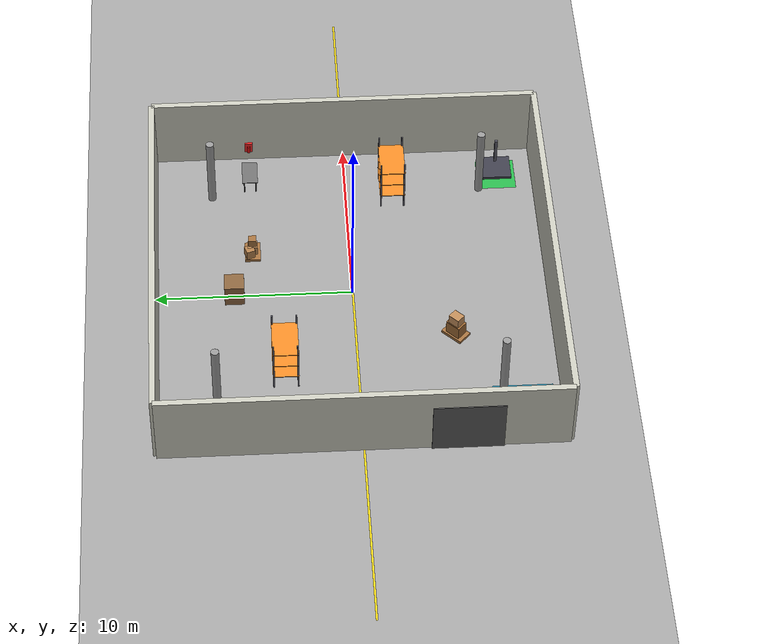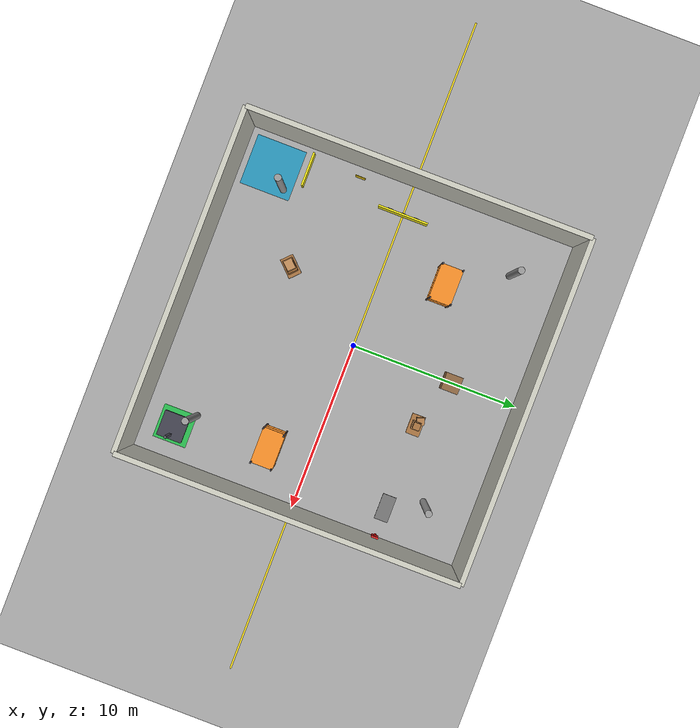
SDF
<?xml version="1.0" ?>
<!--
  Warehouse world for AGV robot simulation
  Compatible with Gazebo Harmonic (gz sim)
-->
<sdf version="1.9">
  <world name="warehouse">

    <!-- Physics settings - Optimized for skid-steer robot stability -->
    <physics name="1ms" type="ignored">
      <max_step_size>0.001</max_step_size>
      <real_time_factor>1.0</real_time_factor>
      <real_time_update_rate>1000</real_time_update_rate>
      <!-- ODE physics parameters for better contact stability -->
      <max_contacts>20</max_contacts>
      <ode>
        <solver>
          <type>quick</type>
          <iters>50</iters>
          <sor>1.3</sor>
        </solver>
        <constraints>
          <cfm>0.0</cfm>
          <erp>0.2</erp>
          <contact_max_correcting_vel>100.0</contact_max_correcting_vel>
          <contact_surface_layer>0.001</contact_surface_layer>
        </constraints>
      </ode>
    </physics>

    <!-- Plugin for physics engine -->
    <plugin
      filename="gz-sim-physics-system"
      name="gz::sim::systems::Physics">
    </plugin>

    <!-- Plugin for user commands -->
    <plugin
      filename="gz-sim-user-commands-system"
      name="gz::sim::systems::UserCommands">
    </plugin>

    <!-- Plugin for scene broadcaster -->
    <plugin
      filename="gz-sim-scene-broadcaster-system"
      name="gz::sim::systems::SceneBroadcaster">
    </plugin>

    <!-- Plugin for sensors -->
    <plugin
      filename="gz-sim-sensors-system"
      name="gz::sim::systems::Sensors">
      <render_engine>ogre2</render_engine>
    </plugin>

    <!-- Plugin for IMU -->
    <plugin
      filename="gz-sim-imu-system"
      name="gz::sim::systems::Imu">
    </plugin>

    <!-- Sun light (external ambient lighting) -->
    <light type="directional" name="sun">
      <cast_shadows>true</cast_shadows>
      <pose>0 0 20 0 0 0</pose>
      <diffuse>0.7 0.7 0.65 1</diffuse>
      <specular>0.3 0.3 0.3 1</specular>
      <attenuation>
        <range>1000</range>
        <constant>0.9</constant>
        <linear>0.01</linear>
        <quadratic>0.001</quadratic>
      </attenuation>
      <direction>-0.4 0.2 -0.9</direction>
    </light>

    <!-- Ambient warehouse lighting -->
    <light type="directional" name="ambient_fill">
      <cast_shadows>false</cast_shadows>
      <pose>0 0 10 0 0 0</pose>
      <diffuse>0.4 0.4 0.4 1</diffuse>
      <specular>0.1 0.1 0.1 1</specular>
      <direction>0.3 -0.3 -0.7</direction>
    </light>

    <!-- Warehouse concrete floor -->
    <model name="ground_plane">
      <static>true</static>
      <link name="link">
        <collision name="collision">
          <geometry>
            <plane>
              <normal>0 0 1</normal>
              <size>100 100</size>
            </plane>
          </geometry>
          <surface>
            <friction>
              <ode>
                <mu>100</mu>
                <mu2>50</mu2>
              </ode>
            </friction>
          </surface>
        </collision>
        <visual name="concrete_floor">
          <geometry>
            <plane>
              <normal>0 0 1</normal>
              <size>100 100</size>
            </plane>
          </geometry>
          <material>
            <ambient>0.6 0.6 0.6 1</ambient>
            <diffuse>0.65 0.65 0.65 1</diffuse>
            <specular>0.1 0.1 0.1 1</specular>
          </material>
        </visual>
      </link>
    </model>

    <!-- Floor marking lines -->
    <!-- Center aisle line -->
    <model name="floor_line_center">
      <static>true</static>
      <pose>0 0 0.001 0 0 0</pose>
      <link name="link">
        <visual name="visual">
          <geometry>
            <box>
              <size>40 0.1 0.001</size>
            </box>
          </geometry>
          <material>
            <ambient>0.95 0.85 0.1 1</ambient>
            <diffuse>0.95 0.85 0.1 1</diffuse>
          </material>
        </visual>
      </link>
    </model>

    <!-- Loading zone markings -->
    <model name="loading_zone_1">
      <static>true</static>
      <pose>-8 -8 0.001 0 0 0</pose>
      <link name="link">
        <visual name="visual">
          <geometry>
            <box>
              <size>3 3 0.001</size>
            </box>
          </geometry>
          <material>
            <ambient>0.0 0.6 0.8 0.7</ambient>
            <diffuse>0.0 0.6 0.8 0.7</diffuse>
          </material>
        </visual>
      </link>
    </model>

    <!-- Parking/Charging zone -->
    <model name="charging_zone">
      <static>true</static>
      <pose>8 -8 0.001 0 0 0</pose>
      <link name="link">
        <visual name="visual">
          <geometry>
            <box>
              <size>2 2 0.001</size>
            </box>
          </geometry>
          <material>
            <ambient>0.0 0.8 0.2 0.7</ambient>
            <diffuse>0.0 0.8 0.2 0.7</diffuse>
          </material>
        </visual>
      </link>
    </model>

    <!-- Warehouse walls and structure -->
    <!-- North Wall with windows -->
    <model name="wall_north">
      <static>true</static>
      <pose>10 0 2 0 0 0</pose>
      <link name="link">
        <collision name="collision">
          <geometry>
            <box>
              <size>0.3 20 4</size>
            </box>
          </geometry>
        </collision>
        <visual name="main_wall">
          <geometry>
            <box>
              <size>0.3 20 4</size>
            </box>
          </geometry>
          <material>
            <ambient>0.75 0.75 0.7 1</ambient>
            <diffuse>0.8 0.8 0.75 1</diffuse>
            <specular>0.1 0.1 0.1 1</specular>
          </material>
        </visual>
      </link>
    </model>

    <!-- North wall windows -->
    <model name="window_north_1">
      <static>true</static>
      <pose>10.2 -6 2.5 0 0 0</pose>
      <link name="link">
        <visual name="visual">
          <geometry>
            <box>
              <size>0.05 2 1.5</size>
            </box>
          </geometry>
          <material>
            <ambient>0.5 0.7 0.9 0.5</ambient>
            <diffuse>0.5 0.7 0.9 0.5</diffuse>
          </material>
        </visual>
      </link>
    </model>

    <model name="window_north_2">
      <static>true</static>
      <pose>10.2 0 2.5 0 0 0</pose>
      <link name="link">
        <visual name="visual">
          <geometry>
            <box>
              <size>0.05 2 1.5</size>
            </box>
          </geometry>
          <material>
            <ambient>0.5 0.7 0.9 0.5</ambient>
            <diffuse>0.5 0.7 0.9 0.5</diffuse>
          </material>
        </visual>
      </link>
    </model>

    <model name="window_north_3">
      <static>true</static>
      <pose>10.2 6 2.5 0 0 0</pose>
      <link name="link">
        <visual name="visual">
          <geometry>
            <box>
              <size>0.05 2 1.5</size>
            </box>
          </geometry>
          <material>
            <ambient>0.5 0.7 0.9 0.5</ambient>
            <diffuse>0.5 0.7 0.9 0.5</diffuse>
          </material>
        </visual>
      </link>
    </model>

    <!-- South Wall with loading dock door -->
    <model name="wall_south">
      <static>true</static>
      <pose>-10 0 2 0 0 0</pose>
      <link name="link">
        <collision name="collision">
          <geometry>
            <box>
              <size>0.3 20 4</size>
            </box>
          </geometry>
        </collision>
        <visual name="main_wall">
          <geometry>
            <box>
              <size>0.3 20 4</size>
            </box>
          </geometry>
          <material>
            <ambient>0.75 0.75 0.7 1</ambient>
            <diffuse>0.8 0.8 0.75 1</diffuse>
            <specular>0.1 0.1 0.1 1</specular>
          </material>
        </visual>
      </link>
    </model>

    <!-- Loading dock door -->
    <model name="loading_door">
      <static>true</static>
      <pose>-10.2 -5 1.5 0 0 0</pose>
      <link name="link">
        <visual name="visual">
          <geometry>
            <box>
              <size>0.05 3.5 3</size>
            </box>
          </geometry>
          <material>
            <ambient>0.3 0.3 0.3 1</ambient>
            <diffuse>0.35 0.35 0.35 1</diffuse>
          </material>
        </visual>
      </link>
    </model>

    <!-- East Wall -->
    <model name="wall_east">
      <static>true</static>
      <pose>0 10 2 0 0 0</pose>
      <link name="link">
        <collision name="collision">
          <geometry>
            <box>
              <size>20 0.3 4</size>
            </box>
          </geometry>
        </collision>
        <visual name="main_wall">
          <geometry>
            <box>
              <size>20 0.3 4</size>
            </box>
          </geometry>
          <material>
            <ambient>0.75 0.75 0.7 1</ambient>
            <diffuse>0.8 0.8 0.75 1</diffuse>
            <specular>0.1 0.1 0.1 1</specular>
          </material>
        </visual>
      </link>
    </model>

    <!-- West Wall -->
    <model name="wall_west">
      <static>true</static>
      <pose>0 -10 2 0 0 0</pose>
      <link name="link">
        <collision name="collision">
          <geometry>
            <box>
              <size>20 0.3 4</size>
            </box>
          </geometry>
        </collision>
        <visual name="main_wall">
          <geometry>
            <box>
              <size>20 0.3 4</size>
            </box>
          </geometry>
          <material>
            <ambient>0.75 0.75 0.7 1</ambient>
            <diffuse>0.8 0.8 0.75 1</diffuse>
            <specular>0.1 0.1 0.1 1</specular>
          </material>
        </visual>
      </link>
    </model>

    <!-- Structural columns -->
    <model name="column_1">
      <static>true</static>
      <pose>-7 7 2 0 0 0</pose>
      <link name="link">
        <collision name="collision">
          <geometry>
            <cylinder>
              <radius>0.2</radius>
              <length>4</length>
            </cylinder>
          </geometry>
        </collision>
        <visual name="visual">
          <geometry>
            <cylinder>
              <radius>0.2</radius>
              <length>4</length>
            </cylinder>
          </geometry>
          <material>
            <ambient>0.5 0.5 0.5 1</ambient>
            <diffuse>0.6 0.6 0.6 1</diffuse>
          </material>
        </visual>
      </link>
    </model>

    <model name="column_2">
      <static>true</static>
      <pose>-7 -7 2 0 0 0</pose>
      <link name="link">
        <collision name="collision">
          <geometry>
            <cylinder>
              <radius>0.2</radius>
              <length>4</length>
            </cylinder>
          </geometry>
        </collision>
        <visual name="visual">
          <geometry>
            <cylinder>
              <radius>0.2</radius>
              <length>4</length>
            </cylinder>
          </geometry>
          <material>
            <ambient>0.5 0.5 0.5 1</ambient>
            <diffuse>0.6 0.6 0.6 1</diffuse>
          </material>
        </visual>
      </link>
    </model>

    <model name="column_3">
      <static>true</static>
      <pose>7 7 2 0 0 0</pose>
      <link name="link">
        <collision name="collision">
          <geometry>
            <cylinder>
              <radius>0.2</radius>
              <length>4</length>
            </cylinder>
          </geometry>
        </collision>
        <visual name="visual">
          <geometry>
            <cylinder>
              <radius>0.2</radius>
              <length>4</length>
            </cylinder>
          </geometry>
          <material>
            <ambient>0.5 0.5 0.5 1</ambient>
            <diffuse>0.6 0.6 0.6 1</diffuse>
          </material>
        </visual>
      </link>
    </model>

    <model name="column_4">
      <static>true</static>
      <pose>7 -7 2 0 0 0</pose>
      <link name="link">
        <collision name="collision">
          <geometry>
            <cylinder>
              <radius>0.2</radius>
              <length>4</length>
            </cylinder>
          </geometry>
        </collision>
        <visual name="visual">
          <geometry>
            <cylinder>
              <radius>0.2</radius>
              <length>4</length>
            </cylinder>
          </geometry>
          <material>
            <ambient>0.5 0.5 0.5 1</ambient>
            <diffuse>0.6 0.6 0.6 1</diffuse>
          </material>
        </visual>
      </link>
    </model>

    <!-- Storage Rack 1 (left side) -->
    <model name="storage_rack_1">
      <static>true</static>
      <pose>-6 3 0 0 0 0</pose>
      <link name="link">
        <!-- Vertical posts -->
        <visual name="post_1">
          <pose>0 0 1.5 0 0 0</pose>
          <geometry>
            <box>
              <size>0.08 0.08 3</size>
            </box>
          </geometry>
          <material>
            <ambient>0.3 0.3 0.35 1</ambient>
            <diffuse>0.35 0.35 0.4 1</diffuse>
          </material>
        </visual>
        <visual name="post_2">
          <pose>2 0 1.5 0 0 0</pose>
          <geometry>
            <box>
              <size>0.08 0.08 3</size>
            </box>
          </geometry>
          <material>
            <ambient>0.3 0.3 0.35 1</ambient>
            <diffuse>0.35 0.35 0.4 1</diffuse>
          </material>
        </visual>
        <visual name="post_3">
          <pose>0 1.2 1.5 0 0 0</pose>
          <geometry>
            <box>
              <size>0.08 0.08 3</size>
            </box>
          </geometry>
          <material>
            <ambient>0.3 0.3 0.35 1</ambient>
            <diffuse>0.35 0.35 0.4 1</diffuse>
          </material>
        </visual>
        <visual name="post_4">
          <pose>2 1.2 1.5 0 0 0</pose>
          <geometry>
            <box>
              <size>0.08 0.08 3</size>
            </box>
          </geometry>
          <material>
            <ambient>0.3 0.3 0.35 1</ambient>
            <diffuse>0.35 0.35 0.4 1</diffuse>
          </material>
        </visual>
        <!-- Shelves -->
        <visual name="shelf_1">
          <pose>1 0.6 0.8 0 0 0</pose>
          <geometry>
            <box>
              <size>2.1 1.3 0.04</size>
            </box>
          </geometry>
          <material>
            <ambient>0.9 0.5 0.1 1</ambient>
            <diffuse>0.95 0.55 0.15 1</diffuse>
          </material>
        </visual>
        <visual name="shelf_2">
          <pose>1 0.6 1.6 0 0 0</pose>
          <geometry>
            <box>
              <size>2.1 1.3 0.04</size>
            </box>
          </geometry>
          <material>
            <ambient>0.9 0.5 0.1 1</ambient>
            <diffuse>0.95 0.55 0.15 1</diffuse>
          </material>
        </visual>
        <visual name="shelf_3">
          <pose>1 0.6 2.4 0 0 0</pose>
          <geometry>
            <box>
              <size>2.1 1.3 0.04</size>
            </box>
          </geometry>
          <material>
            <ambient>0.9 0.5 0.1 1</ambient>
            <diffuse>0.95 0.55 0.15 1</diffuse>
          </material>
        </visual>
        <!-- Collision -->
        <collision name="collision">
          <geometry>
            <box>
              <size>2.2 1.4 3</size>
            </box>
          </geometry>
          <pose>1 0.6 1.5 0 0 0</pose>
        </collision>
      </link>
    </model>

    <!-- Storage Rack 2 (right side) -->
    <model name="storage_rack_2">
      <static>true</static>
      <pose>6 -3 0 0 0 0</pose>
      <link name="link">
        <!-- Vertical posts -->
        <visual name="post_1">
          <pose>0 0 1.5 0 0 0</pose>
          <geometry>
            <box>
              <size>0.08 0.08 3</size>
            </box>
          </geometry>
          <material>
            <ambient>0.3 0.3 0.35 1</ambient>
            <diffuse>0.35 0.35 0.4 1</diffuse>
          </material>
        </visual>
        <visual name="post_2">
          <pose>2 0 1.5 0 0 0</pose>
          <geometry>
            <box>
              <size>0.08 0.08 3</size>
            </box>
          </geometry>
          <material>
            <ambient>0.3 0.3 0.35 1</ambient>
            <diffuse>0.35 0.35 0.4 1</diffuse>
          </material>
        </visual>
        <visual name="post_3">
          <pose>0 1.2 1.5 0 0 0</pose>
          <geometry>
            <box>
              <size>0.08 0.08 3</size>
            </box>
          </geometry>
          <material>
            <ambient>0.3 0.3 0.35 1</ambient>
            <diffuse>0.35 0.35 0.4 1</diffuse>
          </material>
        </visual>
        <visual name="post_4">
          <pose>2 1.2 1.5 0 0 0</pose>
          <geometry>
            <box>
              <size>0.08 0.08 3</size>
            </box>
          </geometry>
          <material>
            <ambient>0.3 0.3 0.35 1</ambient>
            <diffuse>0.35 0.35 0.4 1</diffuse>
          </material>
        </visual>
        <!-- Shelves -->
        <visual name="shelf_1">
          <pose>1 0.6 0.8 0 0 0</pose>
          <geometry>
            <box>
              <size>2.1 1.3 0.04</size>
            </box>
          </geometry>
          <material>
            <ambient>0.9 0.5 0.1 1</ambient>
            <diffuse>0.95 0.55 0.15 1</diffuse>
          </material>
        </visual>
        <visual name="shelf_2">
          <pose>1 0.6 1.6 0 0 0</pose>
          <geometry>
            <box>
              <size>2.1 1.3 0.04</size>
            </box>
          </geometry>
          <material>
            <ambient>0.9 0.5 0.1 1</ambient>
            <diffuse>0.95 0.55 0.15 1</diffuse>
          </material>
        </visual>
        <visual name="shelf_3">
          <pose>1 0.6 2.4 0 0 0</pose>
          <geometry>
            <box>
              <size>2.1 1.3 0.04</size>
            </box>
          </geometry>
          <material>
            <ambient>0.9 0.5 0.1 1</ambient>
            <diffuse>0.95 0.55 0.15 1</diffuse>
          </material>
        </visual>
        <!-- Collision -->
        <collision name="collision">
          <geometry>
            <box>
              <size>2.2 1.4 3</size>
            </box>
          </geometry>
          <pose>1 0.6 1.5 0 0 0</pose>
        </collision>
      </link>
    </model>

    <!-- Pallet with boxes 1 -->
    <model name="pallet_1">
      <static>true</static>
      <pose>3 5 0 0 0 0</pose>
      <link name="link">
        <!-- Pallet base -->
        <visual name="pallet">
          <pose>0 0 0.075 0 0 0</pose>
          <geometry>
            <box>
              <size>1.2 0.8 0.15</size>
            </box>
          </geometry>
          <material>
            <ambient>0.6 0.4 0.2 1</ambient>
            <diffuse>0.65 0.45 0.25 1</diffuse>
          </material>
        </visual>
        <!-- Stacked boxes -->
        <visual name="box_1">
          <pose>0 0 0.4 0 0 0</pose>
          <geometry>
            <box>
              <size>0.5 0.5 0.5</size>
            </box>
          </geometry>
          <material>
            <ambient>0.7 0.5 0.3 1</ambient>
            <diffuse>0.75 0.55 0.35 1</diffuse>
          </material>
        </visual>
        <visual name="box_2">
          <pose>-0.3 0.15 0.4 0 0 0.3</pose>
          <geometry>
            <box>
              <size>0.45 0.45 0.5</size>
            </box>
          </geometry>
          <material>
            <ambient>0.65 0.45 0.25 1</ambient>
            <diffuse>0.7 0.5 0.3 1</diffuse>
          </material>
        </visual>
        <visual name="box_3">
          <pose>0 0 0.9 0 0 0</pose>
          <geometry>
            <box>
              <size>0.4 0.4 0.4</size>
            </box>
          </geometry>
          <material>
            <ambient>0.6 0.4 0.2 1</ambient>
            <diffuse>0.65 0.45 0.25 1</diffuse>
          </material>
        </visual>
        <!-- Collision -->
        <collision name="collision">
          <geometry>
            <box>
              <size>1.2 0.8 1.2</size>
            </box>
          </geometry>
          <pose>0 0 0.6 0 0 0</pose>
        </collision>
      </link>
    </model>

    <!-- Pallet with boxes 2 -->
    <model name="pallet_2">
      <static>true</static>
      <pose>-3 -5 0 0 0 0.8</pose>
      <link name="link">
        <!-- Pallet base -->
        <visual name="pallet">
          <pose>0 0 0.075 0 0 0</pose>
          <geometry>
            <box>
              <size>1.2 0.8 0.15</size>
            </box>
          </geometry>
          <material>
            <ambient>0.6 0.4 0.2 1</ambient>
            <diffuse>0.65 0.45 0.25 1</diffuse>
          </material>
        </visual>
        <!-- Stacked boxes -->
        <visual name="box_1">
          <pose>0 0 0.5 0 0 0</pose>
          <geometry>
            <box>
              <size>0.8 0.6 0.7</size>
            </box>
          </geometry>
          <material>
            <ambient>0.55 0.35 0.15 1</ambient>
            <diffuse>0.6 0.4 0.2 1</diffuse>
          </material>
        </visual>
        <visual name="box_2">
          <pose>0 0 1.1 0 0 0</pose>
          <geometry>
            <box>
              <size>0.6 0.5 0.5</size>
            </box>
          </geometry>
          <material>
            <ambient>0.7 0.5 0.3 1</ambient>
            <diffuse>0.75 0.55 0.35 1</diffuse>
          </material>
        </visual>
        <!-- Collision -->
        <collision name="collision">
          <geometry>
            <box>
              <size>1.2 0.8 1.5</size>
            </box>
          </geometry>
          <pose>0 0 0.75 0 0 0</pose>
        </collision>
      </link>
    </model>

    <!-- Single large crate -->
    <model name="large_crate">
      <static>true</static>
      <pose>0 6 0.6 0 0 0</pose>
      <link name="link">
        <collision name="collision">
          <geometry>
            <box>
              <size>1.0 1.0 1.2</size>
            </box>
          </geometry>
        </collision>
        <visual name="visual">
          <geometry>
            <box>
              <size>1.0 1.0 1.2</size>
            </box>
          </geometry>
          <material>
            <ambient>0.5 0.35 0.2 1</ambient>
            <diffuse>0.55 0.4 0.25 1</diffuse>
          </material>
        </visual>
      </link>
    </model>

    <!-- Charging Station -->
    <model name="charging_station">
      <static>true</static>
      <pose>8 -8 0.5 0 0 0</pose>
      <link name="link">
        <!-- Base platform -->
        <visual name="base">
          <pose>0 0 0 0 0 0</pose>
          <geometry>
            <box>
              <size>1.5 1.5 0.15</size>
            </box>
          </geometry>
          <material>
            <ambient>0.2 0.2 0.25 1</ambient>
            <diffuse>0.25 0.25 0.3 1</diffuse>
          </material>
        </visual>
        <!-- Charging post -->
        <visual name="post">
          <pose>0.5 0 0.75 0 0 0</pose>
          <geometry>
            <box>
              <size>0.15 0.15 1.5</size>
            </box>
          </geometry>
          <material>
            <ambient>0.3 0.3 0.35 1</ambient>
            <diffuse>0.35 0.35 0.4 1</diffuse>
          </material>
        </visual>
        <!-- Indicator light -->
        <visual name="indicator">
          <pose>0.5 0 1.2 0 0 0</pose>
          <geometry>
            <sphere>
              <radius>0.05</radius>
            </sphere>
          </geometry>
          <material>
            <ambient>0.0 1.0 0.0 1</ambient>
            <diffuse>0.0 1.0 0.0 1</diffuse>
          </material>
        </visual>
        <collision name="collision">
          <geometry>
            <box>
              <size>1.5 1.5 1.0</size>
            </box>
          </geometry>
        </collision>
      </link>
    </model>

    <!-- Fire extinguisher cabinet -->
    <model name="fire_extinguisher">
      <static>true</static>
      <pose>9.7 5 1 0 0 0</pose>
      <link name="link">
        <!-- Cabinet box -->
        <visual name="cabinet">
          <geometry>
            <box>
              <size>0.1 0.4 0.6</size>
            </box>
          </geometry>
          <material>
            <ambient>0.9 0.1 0.1 1</ambient>
            <diffuse>0.95 0.15 0.15 1</diffuse>
          </material>
        </visual>
        <!-- Extinguisher inside -->
        <visual name="extinguisher">
          <pose>-0.05 0 -0.1 0 0 0</pose>
          <geometry>
            <cylinder>
              <radius>0.08</radius>
              <length>0.4</length>
            </cylinder>
          </geometry>
          <material>
            <ambient>0.8 0.0 0.0 1</ambient>
            <diffuse>0.85 0.05 0.05 1</diffuse>
          </material>
        </visual>
      </link>
    </model>

    <!-- Safety barrier 1 -->
    <model name="safety_barrier_1">
      <static>true</static>
      <pose>-8 0 0.5 0 0 1.57</pose>
      <link name="link">
        <visual name="rail">
          <geometry>
            <box>
              <size>3 0.1 0.8</size>
            </box>
          </geometry>
          <material>
            <ambient>1.0 0.9 0.0 1</ambient>
            <diffuse>1.0 0.95 0.1 1</diffuse>
          </material>
        </visual>
        <visual name="stripe_1">
          <pose>-0.8 0.06 0 0 0 0</pose>
          <geometry>
            <box>
              <size>0.3 0.02 0.85</size>
            </box>
          </geometry>
          <material>
            <ambient>0.1 0.1 0.1 1</ambient>
            <diffuse>0.15 0.15 0.15 1</diffuse>
          </material>
        </visual>
        <visual name="stripe_2">
          <pose>0 0.06 0 0 0 0</pose>
          <geometry>
            <box>
              <size>0.3 0.02 0.85</size>
            </box>
          </geometry>
          <material>
            <ambient>0.1 0.1 0.1 1</ambient>
            <diffuse>0.15 0.15 0.15 1</diffuse>
          </material>
        </visual>
        <visual name="stripe_3">
          <pose>0.8 0.06 0 0 0 0</pose>
          <geometry>
            <box>
              <size>0.3 0.02 0.85</size>
            </box>
          </geometry>
          <material>
            <ambient>0.1 0.1 0.1 1</ambient>
            <diffuse>0.15 0.15 0.15 1</diffuse>
          </material>
        </visual>
        <collision name="collision">
          <geometry>
            <box>
              <size>3 0.1 0.8</size>
            </box>
          </geometry>
        </collision>
      </link>
    </model>

    <!-- Safety barrier 2 -->
    <model name="safety_barrier_2">
      <static>true</static>
      <pose>-8.5 -6 0.5 0 0 0</pose>
      <link name="link">
        <visual name="rail">
          <geometry>
            <box>
              <size>2 0.1 0.8</size>
            </box>
          </geometry>
          <material>
            <ambient>1.0 0.9 0.0 1</ambient>
            <diffuse>1.0 0.95 0.1 1</diffuse>
          </material>
        </visual>
        <collision name="collision">
          <geometry>
            <box>
              <size>2 0.1 0.8</size>
            </box>
          </geometry>
        </collision>
      </link>
    </model>

    <!-- Warning sign 1 (Caution) -->
    <model name="warning_sign_1">
      <static>true</static>
      <pose>-9 -3 1.5 0 0 1.57</pose>
      <link name="link">
        <visual name="sign">
          <geometry>
            <box>
              <size>0.6 0.02 0.6</size>
            </box>
          </geometry>
          <material>
            <ambient>1.0 0.8 0.0 1</ambient>
            <diffuse>1.0 0.85 0.1 1</diffuse>
          </material>
        </visual>
        <visual name="border">
          <pose>0 0.015 0 0 0 0</pose>
          <geometry>
            <box>
              <size>0.55 0.01 0.55</size>
            </box>
          </geometry>
          <material>
            <ambient>0.1 0.1 0.1 1</ambient>
            <diffuse>0.15 0.15 0.15 1</diffuse>
          </material>
        </visual>
      </link>
    </model>

    <!-- Overhead lights -->
    <light type="point" name="overhead_light_1">
      <pose>-5 5 3.8 0 0 0</pose>
      <diffuse>0.9 0.9 0.85 1</diffuse>
      <specular>0.2 0.2 0.2 1</specular>
      <attenuation>
        <range>15</range>
        <constant>0.5</constant>
        <linear>0.01</linear>
        <quadratic>0.001</quadratic>
      </attenuation>
      <cast_shadows>false</cast_shadows>
    </light>

    <light type="point" name="overhead_light_2">
      <pose>5 5 3.8 0 0 0</pose>
      <diffuse>0.9 0.9 0.85 1</diffuse>
      <specular>0.2 0.2 0.2 1</specular>
      <attenuation>
        <range>15</range>
        <constant>0.5</constant>
        <linear>0.01</linear>
        <quadratic>0.001</quadratic>
      </attenuation>
      <cast_shadows>false</cast_shadows>
    </light>

    <light type="point" name="overhead_light_3">
      <pose>-5 -5 3.8 0 0 0</pose>
      <diffuse>0.9 0.9 0.85 1</diffuse>
      <specular>0.2 0.2 0.2 1</specular>
      <attenuation>
        <range>15</range>
        <constant>0.5</constant>
        <linear>0.01</linear>
        <quadratic>0.001</quadratic>
      </attenuation>
      <cast_shadows>false</cast_shadows>
    </light>

    <light type="point" name="overhead_light_4">
      <pose>5 -5 3.8 0 0 0</pose>
      <diffuse>0.9 0.9 0.85 1</diffuse>
      <specular>0.2 0.2 0.2 1</specular>
      <attenuation>
        <range>15</range>
        <constant>0.5</constant>
        <linear>0.01</linear>
        <quadratic>0.001</quadratic>
      </attenuation>
      <cast_shadows>false</cast_shadows>
    </light>

    <!-- Work table -->
    <model name="work_table">
      <static>true</static>
      <pose>8 5 0 0 0 0</pose>
      <link name="link">
        <!-- Table top -->
        <visual name="top">
          <pose>0 0 0.8 0 0 0</pose>
          <geometry>
            <box>
              <size>1.5 0.8 0.04</size>
            </box>
          </geometry>
          <material>
            <ambient>0.4 0.4 0.4 1</ambient>
            <diffuse>0.45 0.45 0.45 1</diffuse>
          </material>
        </visual>
        <!-- Legs -->
        <visual name="leg_1">
          <pose>0.6 0.3 0.4 0 0 0</pose>
          <geometry>
            <cylinder>
              <radius>0.03</radius>
              <length>0.8</length>
            </cylinder>
          </geometry>
          <material>
            <ambient>0.3 0.3 0.3 1</ambient>
            <diffuse>0.35 0.35 0.35 1</diffuse>
          </material>
        </visual>
        <visual name="leg_2">
          <pose>-0.6 0.3 0.4 0 0 0</pose>
          <geometry>
            <cylinder>
              <radius>0.03</radius>
              <length>0.8</length>
            </cylinder>
          </geometry>
          <material>
            <ambient>0.3 0.3 0.3 1</ambient>
            <diffuse>0.35 0.35 0.35 1</diffuse>
          </material>
        </visual>
        <visual name="leg_3">
          <pose>0.6 -0.3 0.4 0 0 0</pose>
          <geometry>
            <cylinder>
              <radius>0.03</radius>
              <length>0.8</length>
            </cylinder>
          </geometry>
          <material>
            <ambient>0.3 0.3 0.3 1</ambient>
            <diffuse>0.35 0.35 0.35 1</diffuse>
          </material>
        </visual>
        <visual name="leg_4">
          <pose>-0.6 -0.3 0.4 0 0 0</pose>
          <geometry>
            <cylinder>
              <radius>0.03</radius>
              <length>0.8</length>
            </cylinder>
          </geometry>
          <material>
            <ambient>0.3 0.3 0.3 1</ambient>
            <diffuse>0.35 0.35 0.35 1</diffuse>
          </material>
        </visual>
        <collision name="collision">
          <pose>0 0 0.4 0 0 0</pose>
          <geometry>
            <box>
              <size>1.5 0.8 0.8</size>
            </box>
          </geometry>
        </collision>
      </link>
    </model>

    <!-- GUI settings -->
    <gui fullscreen="0">
      <plugin filename="GzScene3D" name="3D View">
        <gz-gui>
          <title>3D View</title>
          <property type="bool" key="showTitleBar">false</property>
          <property type="string" key="state">docked</property>
        </gz-gui>
        <engine>ogre2</engine>
        <scene>scene</scene>
        <ambient_light>0.4 0.4 0.4</ambient_light>
        <background_color>0.8 0.8 0.8</background_color>
        <camera_pose>-8 -8 8 0 0.5 0.785</camera_pose>
      </plugin>

      <plugin filename="WorldControl" name="World control">
        <gz-gui>
          <title>World control</title>
          <property type="bool" key="showTitleBar">false</property>
          <property type="bool" key="resizable">false</property>
          <property type="double" key="height">72</property>
          <property type="double" key="width">121</property>
          <property type="double" key="z">1</property>
          <property type="string" key="state">floating</property>
          <anchors target="3D View">
            <line own="left" target="left"/>
            <line own="bottom" target="bottom"/>
          </anchors>
        </gz-gui>
        <play_pause>true</play_pause>
        <step>true</step>
        <start_paused>true</start_paused>
      </plugin>

      <plugin filename="WorldStats" name="World stats">
        <gz-gui>
          <title>World stats</title>
          <property type="bool" key="showTitleBar">false</property>
          <property type="bool" key="resizable">false</property>
          <property type="double" key="height">110</property>
          <property type="double" key="width">290</property>
          <property type="double" key="z">1</property>
          <property type="string" key="state">floating</property>
          <anchors target="3D View">
            <line own="right" target="right"/>
            <line own="bottom" target="bottom"/>
          </anchors>
        </gz-gui>
        <sim_time>true</sim_time>
        <real_time>true</real_time>
        <real_time_factor>true</real_time_factor>
        <iterations>true</iterations>
      </plugin>
    </gui>

  </world>
</sdf>
